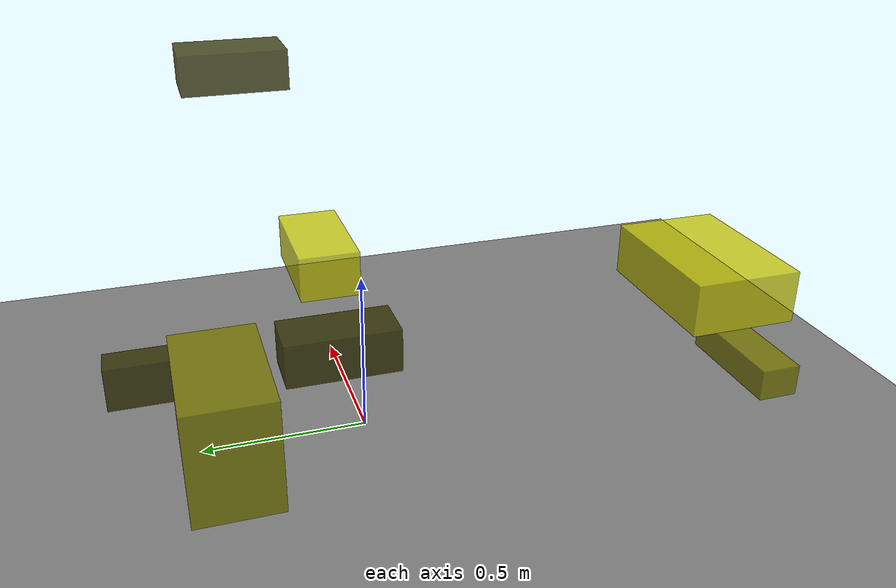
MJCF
<?xml version="1.0"?>
<mujoco model="obstacle_scene">
  <compiler angle="radian" coordinate="local"/>
  <option timestep="0.001" gravity="0 0 -9.81"/>

  <asset>
    <material name="obstacle_mat" rgba="0.8 0.8 0.0 0.8"/>
    <material name="ground_mat" rgba="0.5 0.5 0.5 1"/>
  </asset>

  <worldbody>
    <!-- Ground plane -->
    <geom name="ground" type="plane" size="3 3 0.1" material="ground_mat"/>

    <!-- Obstacles -->
    <body name="obstacle_0" pos="0.263642 0.654582 0.130292">
      <geom name="obs_0" type="box" size="0.052517 0.104693 0.072582" rgba="0.2 0.2 0.0 0.8"/>
    </body>
    <body name="obstacle_1" pos="-0.693359 0.467559 0.554580">
      <geom name="obs_1" type="box" size="0.166664 0.097625 0.133333" rgba="0.5 0.5 0.0 0.8"/>
    </body>
    <body name="obstacle_2" pos="0.229572 0.079131 0.491395">
      <geom name="obs_2" type="box" size="0.174481 0.090398 0.069306" rgba="0.8 0.8 0.0 0.8"/>
    </body>
    <body name="obstacle_3" pos="0.216653 0.301479 1.095660">
      <geom name="obs_3" type="box" size="0.089935 0.145567 0.055137" rgba="0.2 0.2 0.0 0.8"/>
    </body>
    <body name="obstacle_4" pos="-0.506430 -0.964228 0.364708">
      <geom name="obs_4" type="box" size="0.156587 0.053870 0.042606" rgba="0.5 0.5 0.0 0.8"/>
    </body>
    <body name="obstacle_5" pos="-0.733205 -0.633098 0.769479">
      <geom name="obs_5" type="box" size="0.174510 0.121998 0.059737" rgba="0.8 0.8 0.0 0.8"/>
    </body>
    <body name="obstacle_6" pos="-0.155822 0.106244 0.380847">
      <geom name="obs_6" type="box" size="0.076975 0.163403 0.064522" rgba="0.2 0.2 0.0 0.8"/>
    </body>
  </worldbody>
</mujoco>
